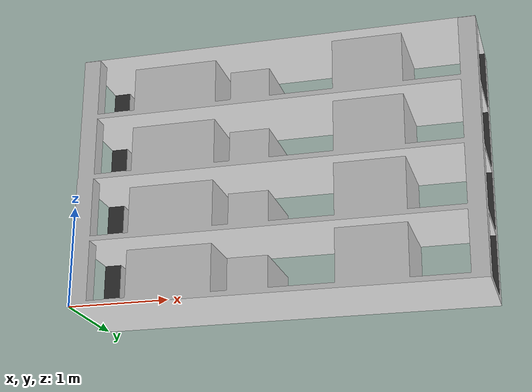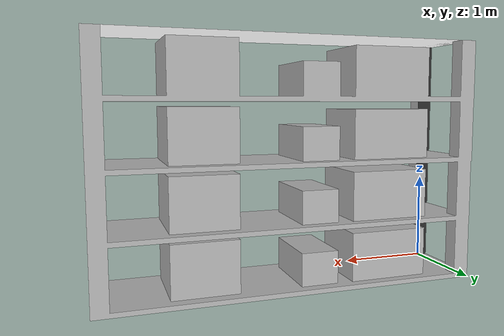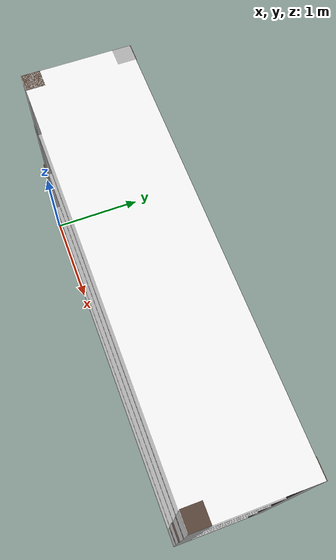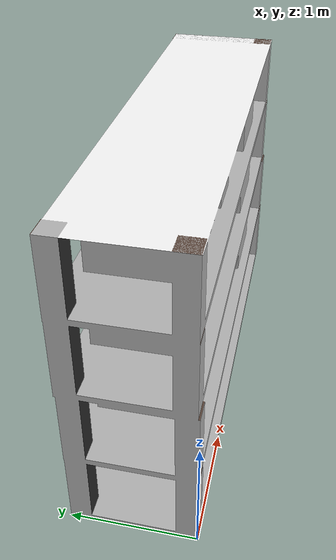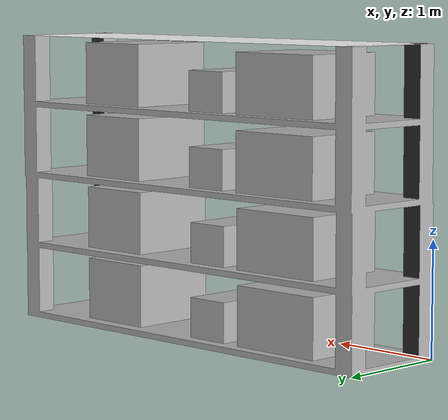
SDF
<?xml version="1.0" ?>
<sdf version="1.5">
  <model name="box_rack">
    <static>true</static>
    <link name="box_rack_link">
      <collision name="collision">
        <geometry>
          <box>
            <size>1 1 1</size>
          </box>
        </geometry>
      </collision>
      <visual name="box_rack_mesh">
      <cast_shadows>true</cast_shadows>
        <geometry>
          <mesh>
            <uri>model://box_rack/meshes/box_rack.dae</uri>
          </mesh>
        </geometry>
      </visual>
    </link>
  </model>
</sdf>
